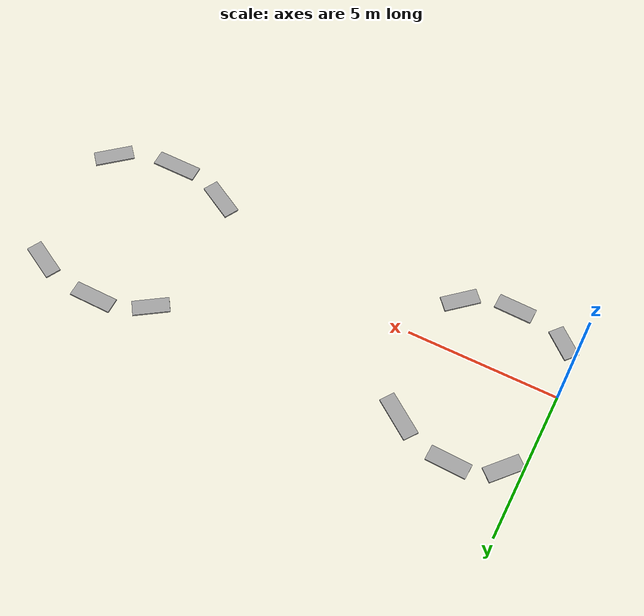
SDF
<?xml version='1.0'?>
<sdf version='1.6'>
  <model name='unit_box_0_1'>
    <link name='link'>
      <pose frame=''>0.511454 -1.95803 -0.224295 0 -0 0.861543</pose>
      <inertial>
        <mass>0.0321225</mass>
        <inertia>
          <ixx>0.00313426</ixx>
          <ixy>0</ixy>
          <ixz>0</ixz>
          <iyy>0.000713489</iyy>
          <iyz>0</iyz>
          <izz>0.00382977</izz>
        </inertia>
        <pose frame=''>0 0 0 0 -0 0</pose>
      </inertial>
      <self_collide>0</self_collide>
      <kinematic>0</kinematic>
      <gravity>1</gravity>
      <visual name='visual'>
        <geometry>
          <box>
            <size>0.512987 1.08053 0.057955</size>
          </box>
        </geometry>
        <material>
          <script>
            <name>Gazebo/Grey</name>
            <uri>file://media/materials/scripts/gazebo.material</uri>
          </script>
          <ambient>0.3 0.3 0.3 1</ambient>
          <diffuse>0.7 0.7 0.7 1</diffuse>
          <specular>0.01 0.01 0.01 1</specular>
          <emissive>0 0 0 1</emissive>
          <shader type='vertex'>
            <normal_map>__default__</normal_map>
          </shader>
        </material>
        <pose frame=''>0 0 0 0 -0 0</pose>
        <cast_shadows>1</cast_shadows>
        <transparency>0</transparency>
      </visual>
      <collision name='collision'>
        <laser_retro>0</laser_retro>
        <max_contacts>10</max_contacts>
        <pose frame=''>0 0 0 0 -0 0</pose>
        <geometry>
          <box>
            <size>0.512987 1.08053 0.057955</size>
          </box>
        </geometry>
        <surface>
          <friction>
            <ode>
              <mu>1</mu>
              <mu2>1</mu2>
              <fdir1>0 0 0</fdir1>
              <slip1>0</slip1>
              <slip2>0</slip2>
            </ode>
            <torsional>
              <coefficient>1</coefficient>
              <patch_radius>0</patch_radius>
              <surface_radius>0</surface_radius>
              <use_patch_radius>1</use_patch_radius>
              <ode>
                <slip>0</slip>
              </ode>
            </torsional>
          </friction>
          <bounce>
            <restitution_coefficient>0</restitution_coefficient>
            <threshold>1e+06</threshold>
          </bounce>
          <contact>
            <collide_without_contact>0</collide_without_contact>
            <collide_without_contact_bitmask>1</collide_without_contact_bitmask>
            <collide_bitmask>1</collide_bitmask>
            <ode>
              <soft_cfm>0</soft_cfm>
              <soft_erp>0.2</soft_erp>
              <kp>1e+13</kp>
              <kd>1</kd>
              <max_vel>0.01</max_vel>
              <min_depth>0</min_depth>
            </ode>
            <bullet>
              <split_impulse>1</split_impulse>
              <split_impulse_penetration_threshold>-0.01</split_impulse_penetration_threshold>
              <soft_cfm>0</soft_cfm>
              <soft_erp>0.2</soft_erp>
              <kp>1e+13</kp>
              <kd>1</kd>
            </bullet>
          </contact>
        </surface>
      </collision>
    </link>
    <link name='link_clone'>
      <pose frame=''>2.34541 -2.41387 -0.224295 0 -0 1.54767</pose>
      <inertial>
        <mass>0.0371726</mass>
        <inertia>
          <ixx>0.00485357</ixx>
          <ixy>0</ixy>
          <ixz>0</ixz>
          <iyy>0.00082566</iyy>
          <iyz>0</iyz>
          <izz>0.00565843</izz>
        </inertia>
        <pose frame=''>0 0 0 0 -0 0</pose>
      </inertial>
      <self_collide>0</self_collide>
      <kinematic>0</kinematic>
      <visual name='visual'>
        <geometry>
          <box>
            <size>0.512987 1.2504 0.057955</size>
          </box>
        </geometry>
        <material>
          <script>
            <name>Gazebo/Grey</name>
            <uri>file://media/materials/scripts/gazebo.material</uri>
          </script>
          <ambient>0.3 0.3 0.3 1</ambient>
          <diffuse>0.7 0.7 0.7 1</diffuse>
          <specular>0.01 0.01 0.01 1</specular>
          <emissive>0 0 0 1</emissive>
          <shader type='vertex'>
            <normal_map>__default__</normal_map>
          </shader>
        </material>
        <pose frame=''>0 0 0 0 -0 0</pose>
        <cast_shadows>1</cast_shadows>
        <transparency>0</transparency>
      </visual>
      <collision name='collision'>
        <laser_retro>0</laser_retro>
        <max_contacts>10</max_contacts>
        <pose frame=''>0 0 0 0 -0 0</pose>
        <geometry>
          <box>
            <size>0.512987 1.2504 0.057955</size>
          </box>
        </geometry>
        <surface>
          <friction>
            <ode>
              <mu>1</mu>
              <mu2>1</mu2>
              <fdir1>0 0 0</fdir1>
              <slip1>0</slip1>
              <slip2>0</slip2>
            </ode>
            <torsional>
              <coefficient>1</coefficient>
              <patch_radius>0</patch_radius>
              <surface_radius>0</surface_radius>
              <use_patch_radius>1</use_patch_radius>
              <ode>
                <slip>0</slip>
              </ode>
            </torsional>
          </friction>
          <bounce>
            <restitution_coefficient>0</restitution_coefficient>
            <threshold>1e+06</threshold>
          </bounce>
          <contact>
            <collide_without_contact>0</collide_without_contact>
            <collide_without_contact_bitmask>1</collide_without_contact_bitmask>
            <collide_bitmask>1</collide_bitmask>
            <ode>
              <soft_cfm>0</soft_cfm>
              <soft_erp>0.2</soft_erp>
              <kp>1e+13</kp>
              <kd>1</kd>
              <max_vel>0.01</max_vel>
              <min_depth>0</min_depth>
            </ode>
            <bullet>
              <split_impulse>1</split_impulse>
              <split_impulse_penetration_threshold>-0.01</split_impulse_penetration_threshold>
              <soft_cfm>0</soft_cfm>
              <soft_erp>0.2</soft_erp>
              <kp>1e+13</kp>
              <kd>1</kd>
            </bullet>
          </contact>
        </surface>
      </collision>
    </link>
    <link name='link_clone_clone'>
      <pose frame=''>4.02802 -1.90956 -0.224295 0 -0 2.29291</pose>
      <inertial>
        <mass>0.0358186</mass>
        <inertia>
          <ixx>0.00434301</ixx>
          <ixy>0</ixy>
          <ixz>0</ixz>
          <iyy>0.000795586</iyy>
          <iyz>0</iyz>
          <izz>0.00511856</izz>
        </inertia>
        <pose frame=''>0 0 0 0 -0 0</pose>
      </inertial>
      <self_collide>0</self_collide>
      <kinematic>0</kinematic>
      <visual name='visual'>
        <geometry>
          <box>
            <size>0.512987 1.20486 0.057955</size>
          </box>
        </geometry>
        <material>
          <script>
            <name>Gazebo/Grey</name>
            <uri>file://media/materials/scripts/gazebo.material</uri>
          </script>
          <ambient>0.3 0.3 0.3 1</ambient>
          <diffuse>0.7 0.7 0.7 1</diffuse>
          <specular>0.01 0.01 0.01 1</specular>
          <emissive>0 0 0 1</emissive>
          <shader type='vertex'>
            <normal_map>__default__</normal_map>
          </shader>
        </material>
        <pose frame=''>0 0 0 0 -0 0</pose>
        <cast_shadows>1</cast_shadows>
        <transparency>0</transparency>
      </visual>
      <collision name='collision'>
        <laser_retro>0</laser_retro>
        <max_contacts>10</max_contacts>
        <pose frame=''>0 0 0 0 -0 0</pose>
        <geometry>
          <box>
            <size>0.512987 1.20486 0.057955</size>
          </box>
        </geometry>
        <surface>
          <friction>
            <ode>
              <mu>1</mu>
              <mu2>1</mu2>
              <fdir1>0 0 0</fdir1>
              <slip1>0</slip1>
              <slip2>0</slip2>
            </ode>
            <torsional>
              <coefficient>1</coefficient>
              <patch_radius>0</patch_radius>
              <surface_radius>0</surface_radius>
              <use_patch_radius>1</use_patch_radius>
              <ode>
                <slip>0</slip>
              </ode>
            </torsional>
          </friction>
          <bounce>
            <restitution_coefficient>0</restitution_coefficient>
            <threshold>1e+06</threshold>
          </bounce>
          <contact>
            <collide_without_contact>0</collide_without_contact>
            <collide_without_contact_bitmask>1</collide_without_contact_bitmask>
            <collide_bitmask>1</collide_bitmask>
            <ode>
              <soft_cfm>0</soft_cfm>
              <soft_erp>0.2</soft_erp>
              <kp>1e+13</kp>
              <kd>1</kd>
              <max_vel>0.01</max_vel>
              <min_depth>0</min_depth>
            </ode>
            <bullet>
              <split_impulse>1</split_impulse>
              <split_impulse_penetration_threshold>-0.01</split_impulse_penetration_threshold>
              <soft_cfm>0</soft_cfm>
              <soft_erp>0.2</soft_erp>
              <kp>1e+13</kp>
              <kd>1</kd>
            </bullet>
          </contact>
        </surface>
      </collision>
    </link>
    <link name='link_clone_clone_clone'>
      <pose frame=''>0.568221 2.76683 -0.224295 0 -0 2.41169</pose>
      <inertial>
        <mass>0.0358186</mass>
        <inertia>
          <ixx>0.00434301</ixx>
          <ixy>0</ixy>
          <ixz>0</ixz>
          <iyy>0.000795586</iyy>
          <iyz>0</iyz>
          <izz>0.00511856</izz>
        </inertia>
        <pose frame=''>0 0 0 0 -0 0</pose>
      </inertial>
      <self_collide>0</self_collide>
      <kinematic>0</kinematic>
      <visual name='visual'>
        <geometry>
          <box>
            <size>0.512987 1.20486 0.057955</size>
          </box>
        </geometry>
        <material>
          <script>
            <name>Gazebo/Grey</name>
            <uri>file://media/materials/scripts/gazebo.material</uri>
          </script>
          <ambient>0.3 0.3 0.3 1</ambient>
          <diffuse>0.7 0.7 0.7 1</diffuse>
          <specular>0.01 0.01 0.01 1</specular>
          <emissive>0 0 0 1</emissive>
          <shader type='vertex'>
            <normal_map>__default__</normal_map>
          </shader>
        </material>
        <pose frame=''>0 0 0 0 -0 0</pose>
        <cast_shadows>1</cast_shadows>
        <transparency>0</transparency>
      </visual>
      <collision name='collision'>
        <laser_retro>0</laser_retro>
        <max_contacts>10</max_contacts>
        <pose frame=''>0 0 0 0 -0 0</pose>
        <geometry>
          <box>
            <size>0.512987 1.20486 0.057955</size>
          </box>
        </geometry>
        <surface>
          <friction>
            <ode>
              <mu>1</mu>
              <mu2>1</mu2>
              <fdir1>0 0 0</fdir1>
              <slip1>0</slip1>
              <slip2>0</slip2>
            </ode>
            <torsional>
              <coefficient>1</coefficient>
              <patch_radius>0</patch_radius>
              <surface_radius>0</surface_radius>
              <use_patch_radius>1</use_patch_radius>
              <ode>
                <slip>0</slip>
              </ode>
            </torsional>
          </friction>
          <bounce>
            <restitution_coefficient>0</restitution_coefficient>
            <threshold>1e+06</threshold>
          </bounce>
          <contact>
            <collide_without_contact>0</collide_without_contact>
            <collide_without_contact_bitmask>1</collide_without_contact_bitmask>
            <collide_bitmask>1</collide_bitmask>
            <ode>
              <soft_cfm>0</soft_cfm>
              <soft_erp>0.2</soft_erp>
              <kp>1e+13</kp>
              <kd>1</kd>
              <max_vel>0.01</max_vel>
              <min_depth>0</min_depth>
            </ode>
            <bullet>
              <split_impulse>1</split_impulse>
              <split_impulse_penetration_threshold>-0.01</split_impulse_penetration_threshold>
              <soft_cfm>0</soft_cfm>
              <soft_erp>0.2</soft_erp>
              <kp>1e+13</kp>
              <kd>1</kd>
            </bullet>
          </contact>
        </surface>
      </collision>
    </link>
    <link name='link_clone_clone_clone_clone'>
      <pose frame=''>2.12787 3.33108 -0.224295 0 -0 1.53724</pose>
      <inertial>
        <mass>0.0399724</mass>
        <inertia>
          <ixx>0.00603323</ixx>
          <ixy>0</ixy>
          <ixz>0</ixz>
          <iyy>0.000887849</iyy>
          <iyz>0</iyz>
          <izz>0.00689872</izz>
        </inertia>
        <pose frame=''>0 0 0 0 -0 0</pose>
      </inertial>
      <self_collide>0</self_collide>
      <kinematic>0</kinematic>
      <visual name='visual'>
        <geometry>
          <box>
            <size>0.512987 1.34458 0.057955</size>
          </box>
        </geometry>
        <material>
          <script>
            <name>Gazebo/Grey</name>
            <uri>file://media/materials/scripts/gazebo.material</uri>
          </script>
          <ambient>0.3 0.3 0.3 1</ambient>
          <diffuse>0.7 0.7 0.7 1</diffuse>
          <specular>0.01 0.01 0.01 1</specular>
          <emissive>0 0 0 1</emissive>
          <shader type='vertex'>
            <normal_map>__default__</normal_map>
          </shader>
        </material>
        <pose frame=''>0 0 0 0 -0 0</pose>
        <cast_shadows>1</cast_shadows>
        <transparency>0</transparency>
      </visual>
      <collision name='collision'>
        <laser_retro>0</laser_retro>
        <max_contacts>10</max_contacts>
        <pose frame=''>0 0 0 0 -0 0</pose>
        <geometry>
          <box>
            <size>0.512987 1.34458 0.057955</size>
          </box>
        </geometry>
        <surface>
          <friction>
            <ode>
              <mu>1</mu>
              <mu2>1</mu2>
              <fdir1>0 0 0</fdir1>
              <slip1>0</slip1>
              <slip2>0</slip2>
            </ode>
            <torsional>
              <coefficient>1</coefficient>
              <patch_radius>0</patch_radius>
              <surface_radius>0</surface_radius>
              <use_patch_radius>1</use_patch_radius>
              <ode>
                <slip>0</slip>
              </ode>
            </torsional>
          </friction>
          <bounce>
            <restitution_coefficient>0</restitution_coefficient>
            <threshold>1e+06</threshold>
          </bounce>
          <contact>
            <collide_without_contact>0</collide_without_contact>
            <collide_without_contact_bitmask>1</collide_without_contact_bitmask>
            <collide_bitmask>1</collide_bitmask>
            <ode>
              <soft_cfm>0</soft_cfm>
              <soft_erp>0.2</soft_erp>
              <kp>1e+13</kp>
              <kd>1</kd>
              <max_vel>0.01</max_vel>
              <min_depth>0</min_depth>
            </ode>
            <bullet>
              <split_impulse>1</split_impulse>
              <split_impulse_penetration_threshold>-0.01</split_impulse_penetration_threshold>
              <soft_cfm>0</soft_cfm>
              <soft_erp>0.2</soft_erp>
              <kp>1e+13</kp>
              <kd>1</kd>
            </bullet>
          </contact>
        </surface>
      </collision>
    </link>
    <link name='link_clone_clone_clone_clone_0'>
      <pose frame=''>4.08515 2.65239 -0.224295 0 -0 0.950487</pose>
      <inertial>
        <mass>0.0447953</mass>
        <inertia>
          <ixx>0.00848789</ixx>
          <ixy>0</ixy>
          <ixz>0</ixz>
          <iyy>0.000994971</iyy>
          <iyz>0</iyz>
          <izz>0.00945781</izz>
        </inertia>
        <pose frame=''>0 0 0 0 -0 0</pose>
      </inertial>
      <self_collide>0</self_collide>
      <kinematic>0</kinematic>
      <visual name='visual'>
        <geometry>
          <box>
            <size>0.512987 1.50681 0.057955</size>
          </box>
        </geometry>
        <material>
          <script>
            <name>Gazebo/Grey</name>
            <uri>file://media/materials/scripts/gazebo.material</uri>
          </script>
          <ambient>0.3 0.3 0.3 1</ambient>
          <diffuse>0.7 0.7 0.7 1</diffuse>
          <specular>0.01 0.01 0.01 1</specular>
          <emissive>0 0 0 1</emissive>
          <shader type='vertex'>
            <normal_map>__default__</normal_map>
          </shader>
        </material>
        <pose frame=''>0 0 0 0 -0 0</pose>
        <cast_shadows>1</cast_shadows>
        <transparency>0</transparency>
      </visual>
      <collision name='collision'>
        <laser_retro>0</laser_retro>
        <max_contacts>10</max_contacts>
        <pose frame=''>0 0 0 0 -0 0</pose>
        <geometry>
          <box>
            <size>0.512987 1.50681 0.057955</size>
          </box>
        </geometry>
        <surface>
          <friction>
            <ode>
              <mu>1</mu>
              <mu2>1</mu2>
              <fdir1>0 0 0</fdir1>
              <slip1>0</slip1>
              <slip2>0</slip2>
            </ode>
            <torsional>
              <coefficient>1</coefficient>
              <patch_radius>0</patch_radius>
              <surface_radius>0</surface_radius>
              <use_patch_radius>1</use_patch_radius>
              <ode>
                <slip>0</slip>
              </ode>
            </torsional>
          </friction>
          <bounce>
            <restitution_coefficient>0</restitution_coefficient>
            <threshold>1e+06</threshold>
          </bounce>
          <contact>
            <collide_without_contact>0</collide_without_contact>
            <collide_without_contact_bitmask>1</collide_without_contact_bitmask>
            <collide_bitmask>1</collide_bitmask>
            <ode>
              <soft_cfm>0</soft_cfm>
              <soft_erp>0.2</soft_erp>
              <kp>1e+13</kp>
              <kd>1</kd>
              <max_vel>0.01</max_vel>
              <min_depth>0</min_depth>
            </ode>
            <bullet>
              <split_impulse>1</split_impulse>
              <split_impulse_penetration_threshold>-0.01</split_impulse_penetration_threshold>
              <soft_cfm>0</soft_cfm>
              <soft_erp>0.2</soft_erp>
              <kp>1e+13</kp>
              <kd>1</kd>
            </bullet>
          </contact>
        </surface>
      </collision>
    </link>
    <link name='link_clone_clone_clone_clone_1'>
      <pose frame=''>12.68 -1.79314 -0.224295 0 -0 1.05377</pose>
      <inertial>
        <mass>0.0399977</mass>
        <inertia>
          <ixx>0.00604466</ixx>
          <ixy>0</ixy>
          <ixz>0</ixz>
          <iyy>0.000888411</iyy>
          <iyz>0</iyz>
          <izz>0.0069107</izz>
        </inertia>
        <pose frame=''>0 0 0 0 -0 0</pose>
      </inertial>
      <self_collide>0</self_collide>
      <kinematic>0</kinematic>
      <visual name='visual'>
        <geometry>
          <box>
            <size>0.512987 1.34544 0.057955</size>
          </box>
        </geometry>
        <material>
          <script>
            <name>Gazebo/Grey</name>
            <uri>file://media/materials/scripts/gazebo.material</uri>
          </script>
          <ambient>0.3 0.3 0.3 1</ambient>
          <diffuse>0.7 0.7 0.7 1</diffuse>
          <specular>0.01 0.01 0.01 1</specular>
          <emissive>0 0 0 1</emissive>
          <shader type='vertex'>
            <normal_map>__default__</normal_map>
          </shader>
        </material>
        <pose frame=''>0 0 0 0 -0 0</pose>
        <cast_shadows>1</cast_shadows>
        <transparency>0</transparency>
      </visual>
      <collision name='collision'>
        <laser_retro>0</laser_retro>
        <max_contacts>10</max_contacts>
        <pose frame=''>0 0 0 0 -0 0</pose>
        <geometry>
          <box>
            <size>0.512987 1.34544 0.057955</size>
          </box>
        </geometry>
        <surface>
          <friction>
            <ode>
              <mu>1</mu>
              <mu2>1</mu2>
              <fdir1>0 0 0</fdir1>
              <slip1>0</slip1>
              <slip2>0</slip2>
            </ode>
            <torsional>
              <coefficient>1</coefficient>
              <patch_radius>0</patch_radius>
              <surface_radius>0</surface_radius>
              <use_patch_radius>1</use_patch_radius>
              <ode>
                <slip>0</slip>
              </ode>
            </torsional>
          </friction>
          <bounce>
            <restitution_coefficient>0</restitution_coefficient>
            <threshold>1e+06</threshold>
          </bounce>
          <contact>
            <collide_without_contact>0</collide_without_contact>
            <collide_without_contact_bitmask>1</collide_without_contact_bitmask>
            <collide_bitmask>1</collide_bitmask>
            <ode>
              <soft_cfm>0</soft_cfm>
              <soft_erp>0.2</soft_erp>
              <kp>1e+13</kp>
              <kd>1</kd>
              <max_vel>0.01</max_vel>
              <min_depth>0</min_depth>
            </ode>
            <bullet>
              <split_impulse>1</split_impulse>
              <split_impulse_penetration_threshold>-0.01</split_impulse_penetration_threshold>
              <soft_cfm>0</soft_cfm>
              <soft_erp>0.2</soft_erp>
              <kp>1e+13</kp>
              <kd>1</kd>
            </bullet>
          </contact>
        </surface>
      </collision>
    </link>
    <link name='link_clone_clone_clone_clone_2'>
      <pose frame=''>14.6473 -2.30104 -0.224295 0 -0 1.56097</pose>
      <inertial>
        <mass>0.0442801</mass>
        <inertia>
          <ixx>0.0081987</ixx>
          <ixy>0</ixy>
          <ixz>0</ixz>
          <iyy>0.000983529</iyy>
          <iyz>0</iyz>
          <izz>0.00915746</izz>
        </inertia>
        <pose frame=''>0 0 0 0 -0 0</pose>
      </inertial>
      <self_collide>0</self_collide>
      <kinematic>0</kinematic>
      <visual name='visual'>
        <geometry>
          <box>
            <size>0.512987 1.48949 0.057955</size>
          </box>
        </geometry>
        <material>
          <script>
            <name>Gazebo/Grey</name>
            <uri>file://media/materials/scripts/gazebo.material</uri>
          </script>
          <ambient>0.3 0.3 0.3 1</ambient>
          <diffuse>0.7 0.7 0.7 1</diffuse>
          <specular>0.01 0.01 0.01 1</specular>
          <emissive>0 0 0 1</emissive>
          <shader type='vertex'>
            <normal_map>__default__</normal_map>
          </shader>
        </material>
        <pose frame=''>0 0 0 0 -0 0</pose>
        <cast_shadows>1</cast_shadows>
        <transparency>0</transparency>
      </visual>
      <collision name='collision'>
        <laser_retro>0</laser_retro>
        <max_contacts>10</max_contacts>
        <pose frame=''>0 0 0 0 -0 0</pose>
        <geometry>
          <box>
            <size>0.512987 1.48949 0.057955</size>
          </box>
        </geometry>
        <surface>
          <friction>
            <ode>
              <mu>1</mu>
              <mu2>1</mu2>
              <fdir1>0 0 0</fdir1>
              <slip1>0</slip1>
              <slip2>0</slip2>
            </ode>
            <torsional>
              <coefficient>1</coefficient>
              <patch_radius>0</patch_radius>
              <surface_radius>0</surface_radius>
              <use_patch_radius>1</use_patch_radius>
              <ode>
                <slip>0</slip>
              </ode>
            </torsional>
          </friction>
          <bounce>
            <restitution_coefficient>0</restitution_coefficient>
            <threshold>1e+06</threshold>
          </bounce>
          <contact>
            <collide_without_contact>0</collide_without_contact>
            <collide_without_contact_bitmask>1</collide_without_contact_bitmask>
            <collide_bitmask>1</collide_bitmask>
            <ode>
              <soft_cfm>0</soft_cfm>
              <soft_erp>0.2</soft_erp>
              <kp>1e+13</kp>
              <kd>1</kd>
              <max_vel>0.01</max_vel>
              <min_depth>0</min_depth>
            </ode>
            <bullet>
              <split_impulse>1</split_impulse>
              <split_impulse_penetration_threshold>-0.01</split_impulse_penetration_threshold>
              <soft_cfm>0</soft_cfm>
              <soft_erp>0.2</soft_erp>
              <kp>1e+13</kp>
              <kd>1</kd>
            </bullet>
          </contact>
        </surface>
      </collision>
    </link>
    <link name='link_clone_clone_clone_clone_3'>
      <pose frame=''>16.7541 -1.70065 -0.224295 0 -0 2.26691</pose>
      <inertial>
        <mass>0.0387649</mass>
        <inertia>
          <ixx>0.00550343</ixx>
          <ixy>0</ixy>
          <ixz>0</ixz>
          <iyy>0.000861027</iyy>
          <iyz>0</iyz>
          <izz>0.00634277</izz>
        </inertia>
        <pose frame=''>0 0 0 0 -0 0</pose>
      </inertial>
      <self_collide>0</self_collide>
      <kinematic>0</kinematic>
      <visual name='visual'>
        <geometry>
          <box>
            <size>0.512987 1.30397 0.057955</size>
          </box>
        </geometry>
        <material>
          <script>
            <name>Gazebo/Grey</name>
            <uri>file://media/materials/scripts/gazebo.material</uri>
          </script>
          <ambient>0.3 0.3 0.3 1</ambient>
          <diffuse>0.7 0.7 0.7 1</diffuse>
          <specular>0.01 0.01 0.01 1</specular>
          <emissive>0 0 0 1</emissive>
          <shader type='vertex'>
            <normal_map>__default__</normal_map>
          </shader>
        </material>
        <pose frame=''>0 0 0 0 -0 0</pose>
        <cast_shadows>1</cast_shadows>
        <transparency>0</transparency>
      </visual>
      <collision name='collision'>
        <laser_retro>0</laser_retro>
        <max_contacts>10</max_contacts>
        <pose frame=''>0 0 0 0 -0 0</pose>
        <geometry>
          <box>
            <size>0.512987 1.30397 0.057955</size>
          </box>
        </geometry>
        <surface>
          <friction>
            <ode>
              <mu>1</mu>
              <mu2>1</mu2>
              <fdir1>0 0 0</fdir1>
              <slip1>0</slip1>
              <slip2>0</slip2>
            </ode>
            <torsional>
              <coefficient>1</coefficient>
              <patch_radius>0</patch_radius>
              <surface_radius>0</surface_radius>
              <use_patch_radius>1</use_patch_radius>
              <ode>
                <slip>0</slip>
              </ode>
            </torsional>
          </friction>
          <bounce>
            <restitution_coefficient>0</restitution_coefficient>
            <threshold>1e+06</threshold>
          </bounce>
          <contact>
            <collide_without_contact>0</collide_without_contact>
            <collide_without_contact_bitmask>1</collide_without_contact_bitmask>
            <collide_bitmask>1</collide_bitmask>
            <ode>
              <soft_cfm>0</soft_cfm>
              <soft_erp>0.2</soft_erp>
              <kp>1e+13</kp>
              <kd>1</kd>
              <max_vel>0.01</max_vel>
              <min_depth>0</min_depth>
            </ode>
            <bullet>
              <split_impulse>1</split_impulse>
              <split_impulse_penetration_threshold>-0.01</split_impulse_penetration_threshold>
              <soft_cfm>0</soft_cfm>
              <soft_erp>0.2</soft_erp>
              <kp>1e+13</kp>
              <kd>1</kd>
            </bullet>
          </contact>
        </surface>
      </collision>
    </link>
    <link name='link_clone_clone_clone_clone_4'>
      <pose frame=''>12.7356 2.77793 -0.224295 0 -0 2.15934</pose>
      <inertial>
        <mass>0.0358186</mass>
        <inertia>
          <ixx>0.00434301</ixx>
          <ixy>0</ixy>
          <ixz>0</ixz>
          <iyy>0.000795586</iyy>
          <iyz>0</iyz>
          <izz>0.00511856</izz>
        </inertia>
        <pose frame=''>0 0 0 0 -0 0</pose>
      </inertial>
      <self_collide>0</self_collide>
      <kinematic>0</kinematic>
      <visual name='visual'>
        <geometry>
          <box>
            <size>0.512987 1.20486 0.057955</size>
          </box>
        </geometry>
        <material>
          <script>
            <name>Gazebo/Grey</name>
            <uri>file://media/materials/scripts/gazebo.material</uri>
          </script>
          <ambient>0.3 0.3 0.3 1</ambient>
          <diffuse>0.7 0.7 0.7 1</diffuse>
          <specular>0.01 0.01 0.01 1</specular>
          <emissive>0 0 0 1</emissive>
          <shader type='vertex'>
            <normal_map>__default__</normal_map>
          </shader>
        </material>
        <pose frame=''>0 0 0 0 -0 0</pose>
        <cast_shadows>1</cast_shadows>
        <transparency>0</transparency>
      </visual>
      <collision name='collision'>
        <laser_retro>0</laser_retro>
        <max_contacts>10</max_contacts>
        <pose frame=''>0 0 0 0 -0 0</pose>
        <geometry>
          <box>
            <size>0.512987 1.20486 0.057955</size>
          </box>
        </geometry>
        <surface>
          <friction>
            <ode>
              <mu>1</mu>
              <mu2>1</mu2>
              <fdir1>0 0 0</fdir1>
              <slip1>0</slip1>
              <slip2>0</slip2>
            </ode>
            <torsional>
              <coefficient>1</coefficient>
              <patch_radius>0</patch_radius>
              <surface_radius>0</surface_radius>
              <use_patch_radius>1</use_patch_radius>
              <ode>
                <slip>0</slip>
              </ode>
            </torsional>
          </friction>
          <bounce>
            <restitution_coefficient>0</restitution_coefficient>
            <threshold>1e+06</threshold>
          </bounce>
          <contact>
            <collide_without_contact>0</collide_without_contact>
            <collide_without_contact_bitmask>1</collide_without_contact_bitmask>
            <collide_bitmask>1</collide_bitmask>
            <ode>
              <soft_cfm>0</soft_cfm>
              <soft_erp>0.2</soft_erp>
              <kp>1e+13</kp>
              <kd>1</kd>
              <max_vel>0.01</max_vel>
              <min_depth>0</min_depth>
            </ode>
            <bullet>
              <split_impulse>1</split_impulse>
              <split_impulse_penetration_threshold>-0.01</split_impulse_penetration_threshold>
              <soft_cfm>0</soft_cfm>
              <soft_erp>0.2</soft_erp>
              <kp>1e+13</kp>
              <kd>1</kd>
            </bullet>
          </contact>
        </surface>
      </collision>
    </link>
    <link name='link_clone_clone_clone_clone_5'>
      <pose frame=''>14.5496 3.31623 -0.224295 0 -0 1.55886</pose>
      <inertial>
        <mass>0.0424496</mass>
        <inertia>
          <ixx>0.0072243</ixx>
          <ixy>0</ixy>
          <ixz>0</ixz>
          <iyy>0.00094287</iyy>
          <iyz>0</iyz>
          <izz>0.00814343</izz>
        </inertia>
        <pose frame=''>0 0 0 0 -0 0</pose>
      </inertial>
      <self_collide>0</self_collide>
      <kinematic>0</kinematic>
      <visual name='visual'>
        <geometry>
          <box>
            <size>0.512987 1.42791 0.057955</size>
          </box>
        </geometry>
        <material>
          <script>
            <name>Gazebo/Grey</name>
            <uri>file://media/materials/scripts/gazebo.material</uri>
          </script>
          <ambient>0.3 0.3 0.3 1</ambient>
          <diffuse>0.7 0.7 0.7 1</diffuse>
          <specular>0.01 0.01 0.01 1</specular>
          <emissive>0 0 0 1</emissive>
          <shader type='vertex'>
            <normal_map>__default__</normal_map>
          </shader>
        </material>
        <pose frame=''>0 0 0 0 -0 0</pose>
        <cast_shadows>1</cast_shadows>
        <transparency>0</transparency>
      </visual>
      <collision name='collision'>
        <laser_retro>0</laser_retro>
        <max_contacts>10</max_contacts>
        <pose frame=''>0 0 0 0 -0 0</pose>
        <geometry>
          <box>
            <size>0.512987 1.42791 0.057955</size>
          </box>
        </geometry>
        <surface>
          <friction>
            <ode>
              <mu>1</mu>
              <mu2>1</mu2>
              <fdir1>0 0 0</fdir1>
              <slip1>0</slip1>
              <slip2>0</slip2>
            </ode>
            <torsional>
              <coefficient>1</coefficient>
              <patch_radius>0</patch_radius>
              <surface_radius>0</surface_radius>
              <use_patch_radius>1</use_patch_radius>
              <ode>
                <slip>0</slip>
              </ode>
            </torsional>
          </friction>
          <bounce>
            <restitution_coefficient>0</restitution_coefficient>
            <threshold>1e+06</threshold>
          </bounce>
          <contact>
            <collide_without_contact>0</collide_without_contact>
            <collide_without_contact_bitmask>1</collide_without_contact_bitmask>
            <collide_bitmask>1</collide_bitmask>
            <ode>
              <soft_cfm>0</soft_cfm>
              <soft_erp>0.2</soft_erp>
              <kp>1e+13</kp>
              <kd>1</kd>
              <max_vel>0.01</max_vel>
              <min_depth>0</min_depth>
            </ode>
            <bullet>
              <split_impulse>1</split_impulse>
              <split_impulse_penetration_threshold>-0.01</split_impulse_penetration_threshold>
              <soft_cfm>0</soft_cfm>
              <soft_erp>0.2</soft_erp>
              <kp>1e+13</kp>
              <kd>1</kd>
            </bullet>
          </contact>
        </surface>
      </collision>
    </link>
    <link name='link_clone_clone_clone_clone_6'>
      <pose frame=''>16.7079 2.85296 -0.224295 0 -0 1.0625</pose>
      <inertial>
        <mass>0.0382707</mass>
        <inertia>
          <ixx>0.00529589</ixx>
          <ixy>0</ixy>
          <ixz>0</ixz>
          <iyy>0.000850051</iyy>
          <iyz>0</iyz>
          <izz>0.00612454</izz>
        </inertia>
        <pose frame=''>0 0 0 0 -0 0</pose>
      </inertial>
      <self_collide>0</self_collide>
      <kinematic>0</kinematic>
      <visual name='visual'>
        <geometry>
          <box>
            <size>0.512987 1.28734 0.057955</size>
          </box>
        </geometry>
        <material>
          <script>
            <name>Gazebo/Grey</name>
            <uri>file://media/materials/scripts/gazebo.material</uri>
          </script>
          <ambient>0.3 0.3 0.3 1</ambient>
          <diffuse>0.7 0.7 0.7 1</diffuse>
          <specular>0.01 0.01 0.01 1</specular>
          <emissive>0 0 0 1</emissive>
          <shader type='vertex'>
            <normal_map>__default__</normal_map>
          </shader>
        </material>
        <pose frame=''>0 0 0 0 -0 0</pose>
        <cast_shadows>1</cast_shadows>
        <transparency>0</transparency>
      </visual>
      <collision name='collision'>
        <laser_retro>0</laser_retro>
        <max_contacts>10</max_contacts>
        <pose frame=''>0 0 0 0 -0 0</pose>
        <geometry>
          <box>
            <size>0.512987 1.28734 0.057955</size>
          </box>
        </geometry>
        <surface>
          <friction>
            <ode>
              <mu>1</mu>
              <mu2>1</mu2>
              <fdir1>0 0 0</fdir1>
              <slip1>0</slip1>
              <slip2>0</slip2>
            </ode>
            <torsional>
              <coefficient>1</coefficient>
              <patch_radius>0</patch_radius>
              <surface_radius>0</surface_radius>
              <use_patch_radius>1</use_patch_radius>
              <ode>
                <slip>0</slip>
              </ode>
            </torsional>
          </friction>
          <bounce>
            <restitution_coefficient>0</restitution_coefficient>
            <threshold>1e+06</threshold>
          </bounce>
          <contact>
            <collide_without_contact>0</collide_without_contact>
            <collide_without_contact_bitmask>1</collide_without_contact_bitmask>
            <collide_bitmask>1</collide_bitmask>
            <ode>
              <soft_cfm>0</soft_cfm>
              <soft_erp>0.2</soft_erp>
              <kp>1e+13</kp>
              <kd>1</kd>
              <max_vel>0.01</max_vel>
              <min_depth>0</min_depth>
            </ode>
            <bullet>
              <split_impulse>1</split_impulse>
              <split_impulse_penetration_threshold>-0.01</split_impulse_penetration_threshold>
              <soft_cfm>0</soft_cfm>
              <soft_erp>0.2</soft_erp>
              <kp>1e+13</kp>
              <kd>1</kd>
            </bullet>
          </contact>
        </surface>
      </collision>
    </link>
    <static>0</static>
    <allow_auto_disable>1</allow_auto_disable>
  </model>
</sdf>
